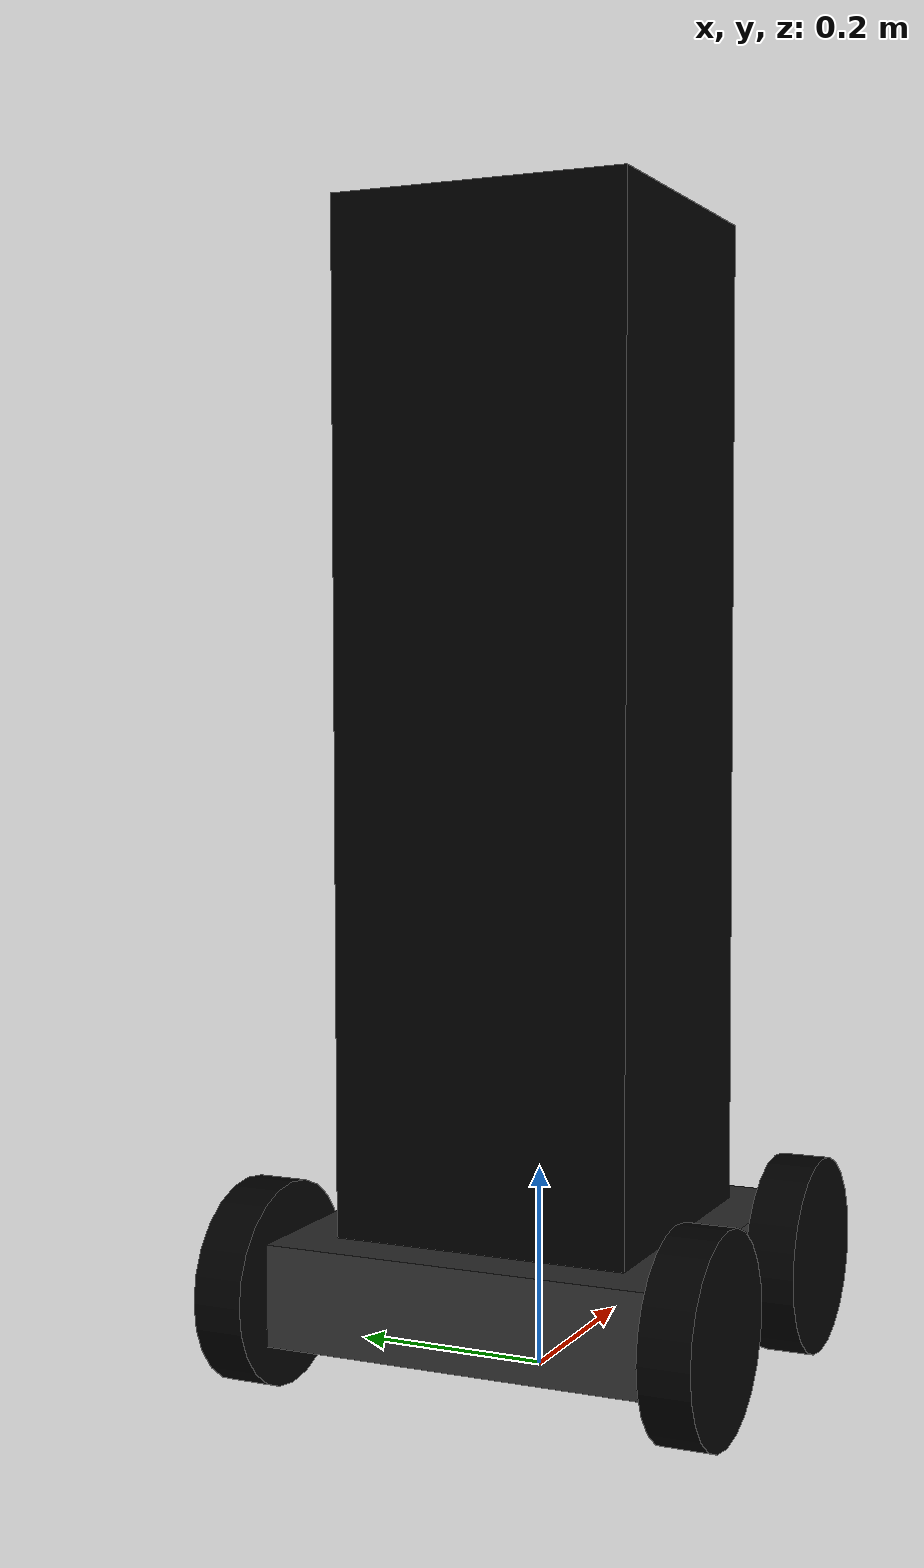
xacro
<?xml version="1.0"?>
  <robot name="sanitization_bot" xmlns:xacro="http://www.ros.org/wiki/xacro">
  	<xacro:include filename="$(find robot_description)/urdf/sanitization_bot.gazebo"/>
  	<xacro:include filename="$(find robot_description)/urdf/materials.xacro"/>
  	<xacro:include filename="$(find robot_description)/urdf/macros.xacro"/>

    <xacro:property name="PI" value="3.1415926535897931"/>

  	<xacro:property name="chassisHeight" value="0.1"/>
  	<xacro:property name="chassisLength" value=".4"/>
  	<xacro:property name="chassisWidth" value="0.4"/>
  	<xacro:property name="chassisMass" value="200"/>

    <xacro:property name="towerHeight" value="1"/>
    <xacro:property name="towerLength" value=".3"/>
    <xacro:property name="towerWidth" value=".3"/>
    <xacro:property name="towerMass" value="100"/>

  	<xacro:property name="wheelWidth" value="0.05"/>
  	<xacro:property name="wheelRadius" value="0.1"/>
  	<xacro:property name="wheelPos" value="0.1"/>
  	<xacro:property name="wheelMass" value="50"/>

  	<xacro:property name="cameraSize" value="0.1"/>
  	<xacro:property name="cameraMass" value="5"/>

    <link name="base_link" />

    <joint name="base_joint" type="fixed">
      <parent link="base_link"/>
      <child link="chassis"/>
      <origin xyz="0 0 ${wheelRadius}"/>
    </joint>

  	<link name='chassis'>
  	   <collision>
  	     <origin xyz="0 0 0" rpy="0 0 0"/>
  	     <geometry>
  	        <box size="${chassisLength} ${chassisWidth} ${chassisHeight}"/>
  	     </geometry>
  	   </collision>

       <visual>
  	     <origin xyz="0 0 0" rpy="0 0 0"/>
  	     <geometry>
           <box size="${chassisLength} ${chassisWidth} ${chassisHeight}"/>
  	     </geometry>
  	       <material name="grey"/>
  	   </visual>

  	   <inertial>
  	     <origin xyz="0 0 0" rpy="0 0 0"/>
  	     <mass value="${chassisMass}"/>
  	     <box_inertia m="${chassisMass}" x="${chassisLength}" y="${chassisWidth}" z="${chassisHeight}"/>
  	   </inertial>
    </link>

    <joint name = "tower" type = "fixed">
      <parent link = "chassis"/>
      <child link = "controlTower"/>
      <origin xyz="0 0 ${chassisHeight / 2}"/>
    </joint>

    <!-- ${wheelRadius + (chassisHeight + towerHeight) / 2} -->
    <link name = "controlTower">
      <collision>
        <origin xyz="0 0 ${towerHeight / 2}" rpy="0 0 0"/>
        <geometry>
           <box size="${towerLength} ${towerWidth} ${towerHeight}"/>
        </geometry>
      </collision>

      <visual>
        <origin xyz="0 0 ${towerHeight / 2}" rpy="0 0 0"/>
        <geometry>
           <box size="${towerLength} ${towerWidth} ${towerHeight}"/>
        </geometry>
        <material name="black"/>
      </visual>

      <inertial>
        <origin xyz="0 0 ${towerHeight / 2}" rpy="0 0 0"/>
        <mass value="${towerMass}"/>
        <box_inertia m="${towerMass}" x="${towerLength}" y="${towerWidth}" z="${towerHeight}"/>
      </inertial>
   </link>

   <xacro:wheel lr="left" fb="front" tY="1" tX = "1"/>
   <xacro:wheel lr="right" fb="front" tY="-1" tX = "1"/>
   <xacro:wheel lr="left" fb = "back" tY="1" tX = "-1"/>
   <xacro:wheel lr="right" fb = "back" tY="-1" tX = "-1"/>

   <joint name = "camera" type = "fixed">
     <parent link = "controlTower"/>
     <child link = "camera_link"/>
     <origin xyz="${towerLength / 2 + cameraSize / 2} 0 ${towerHeight * 3 / 4}"/>
   </joint>

   <link name="camera_link">
     <collision>
       <origin xyz="0 0 0" rpy="0 0 0"/>
       <geometry>
         <box size="${cameraSize} ${cameraSize} ${cameraSize}"/>
       </geometry>
     </collision>

     <visual>
       <origin xyz= "0 0 0" />
       <geometry>
         <box size="${cameraSize} ${cameraSize} ${cameraSize}"/>
       </geometry>
     </visual>

     <inertial>
       <mass value="${cameraMass}" />
       <origin xyz="0 0 0" rpy="0 0 0"/>
       <xacro:box_inertia m = "${cameraMass}" x = "${cameraSize}"
         y = "${cameraSize}" z = "${cameraSize}"/>
     </inertial>
   </link>

   <joint name="camera_optical_joint" type="fixed">
   <origin xyz="0 0 0" rpy="${PI/2} ${PI} ${PI/2}"/>
   <parent link="camera_link"/>
   <child link="camera_link_optical"/>
   </joint>

   <link name="camera_link_optical">
     <collision>
       <origin xyz="0 0 0" rpy="0 0 0"/>
       <geometry>
         <box size="${cameraSize} ${cameraSize} ${cameraSize}"/>
       </geometry>
     </collision>
   </link>

   <joint name = "lidar" type = "fixed">
       <parent link = "controlTower"/>
       <child link = "lidar_link"/>
       <origin xyz="${towerLength / 2 + cameraSize / 2} 0 ${towerHeight / 4}"/>
   </joint>

   <link name="lidar_link">
     <collision>
       <origin xyz="0 0 0" rpy="0 0 0"/>
       <geometry>
         <box size="${cameraSize} ${cameraSize} ${cameraSize}"/>
       </geometry>
     </collision>

     <visual>
       <origin xyz= "0 0 0" />
       <geometry>
         <box size="${cameraSize} ${cameraSize} ${cameraSize}"/>
       </geometry>
     </visual>

     <inertial>
       <mass value="${cameraMass}" />
       <origin xyz="0 0 0" rpy="0 0 0"/>
       <xacro:box_inertia m = "${cameraMass}" x = "${cameraSize}"
         y = "${cameraSize}" z = "${cameraSize}"/>
     </inertial>
   </link>
</robot>

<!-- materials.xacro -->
<robot name="sanitization_bot" xmlns:xacro="http://www.ros.org/wiki/xacro">
    <material name="black">
      <color rgba="0.0 0.0 0.0 1.0"/>
    </material>

    <material name="blue">
      <color rgba="0.0 0.0 0.8 1.0"/>
    </material>

    <material name="green">
      <color rgba="0.0 0.8 0.0 1.0"/>
    </material>

    <material name="grey">
      <color rgba="0.2 0.2 0.2 1.0"/>
    </material>

    <material name="orange">
      <color rgba="${255/255} ${108/255} ${10/255} 1.0"/>
    </material>

    <material name="brown">
      <color rgba="${222/255} ${207/255} ${195/255} 1.0"/>
    </material>

    <material name="red">
      <color rgba="0.8 0.0 0.0 1.0"/>
    </material>

    <material name="white">
      <color rgba="1.0 1.0 1.0 1.0"/>
    </material>
  </robot>

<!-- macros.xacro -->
<robot name="sanitization_bot" xmlns:xacro="http://www.ros.org/wiki/xacro">
    <macro name="cylinder_inertia" params="m r h">
      <inertia  ixx="${m*(3*r*r+h*h)/12}" ixy = "0" ixz = "0"
                iyy="${m*(3*r*r+h*h)/12}" iyz = "0"
                izz="${m*r*r/2}"
                />
    </macro>

    <macro name="box_inertia" params="m x y z">
      <inertia  ixx="${m*(y*y+z*z)/12}" ixy = "0" ixz = "0"
                iyy="${m*(x*x+z*z)/12}" iyz = "0"
                izz="${m*(x*x+z*z)/12}"
                />
    </macro>

    <macro name="sphere_inertia" params="m r">
      <inertia  ixx="${2*m*r*r/5}" ixy = "0" ixz = "0"
                iyy="${2*m*r*r/5}" iyz = "0"
                izz="${2*m*r*r/5}"
                />
    </macro>

    <macro name="wheel" params="lr fb tY tX">

      <link name="${lr}_${fb}_wheel">
        <collision>
          <origin xyz="0 0 0" rpy="0 ${PI/2} ${PI/2}" />
          <geometry>
            <cylinder length="${wheelWidth}" radius="${wheelRadius}"/>
          </geometry>
        </collision>

        <visual>
          <origin xyz="0 0 0" rpy="0 ${PI/2} ${PI/2}" />
          <geometry>
            <cylinder length="${wheelWidth}" radius="${wheelRadius}"/>
          </geometry>
          <material name="black"/>
        </visual>

        <inertial>
          <origin xyz="0 0 0" rpy="0 ${PI/2} ${PI/2}" />
          <mass value="${wheelMass}"/>
          <cylinder_inertia m="${wheelMass}" r="${wheelRadius}" h="${wheelWidth}"/>
        </inertial>
      </link>

      <gazebo reference="${lr}_${fb}_wheel">
        <mu1 value="1.0"/>
        <mu2 value="1.0"/>
        <kp  value="10000000.0" />
        <kd  value="1.0" />
        <fdir1 value="1 0 0"/>
        <material>Gazebo/Black</material>
      </gazebo>

      <joint name="${lr}_${fb}_wheel_hinge" type="continuous">
        <parent link="chassis"/>
        <child link="${lr}_${fb}_wheel"/>
        <origin xyz="${tX * (chassisLength - wheelPos) / 2}
                     ${tY * wheelWidth / 2 + tY * chassisWidth / 2}
                     0"
                rpy="0 0 0" />
        <axis xyz="0 1 0" rpy="0 0 0" />
        <limit effort="100" velocity="100"/>
        <joint_properties damping="0.0" friction="0.0"/>
      </joint>

      <transmission name="${lr}_${fb}_trans">
        <type>transmission_interface/SimpleTransmission</type>

        <joint name="${lr}_${fb}_wheel_hinge">
          <hardwareInterface>hardware_interface/EffortJointInterface</hardwareInterface>
        </joint>

        <actuator name="${lr}_${fb}_motor">
          <mechanicalReduction>10</mechanicalReduction>
        </actuator>
      </transmission>

    </macro>
</robot>
